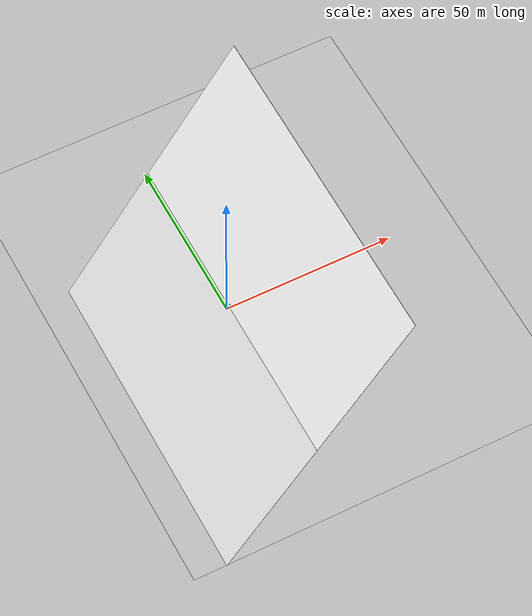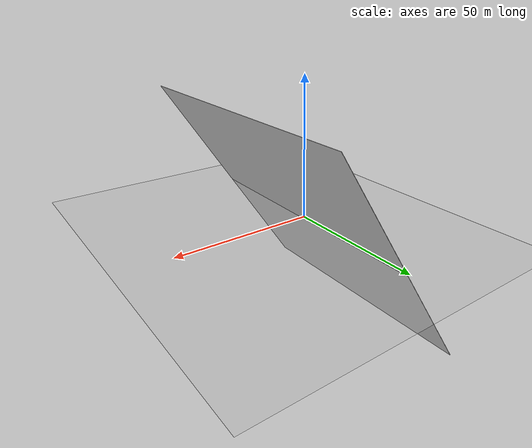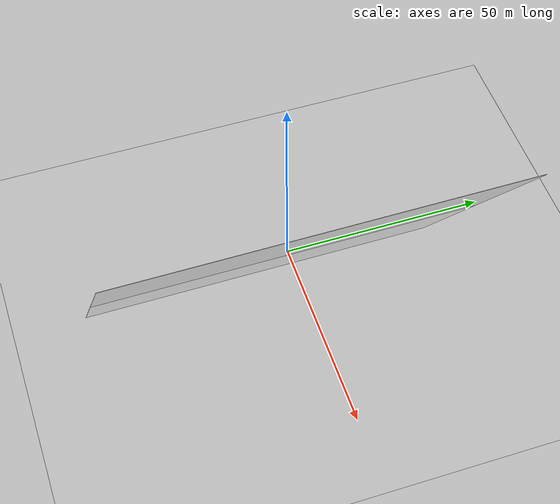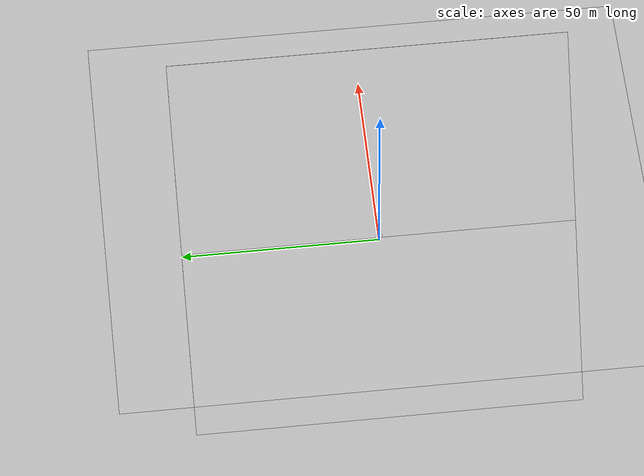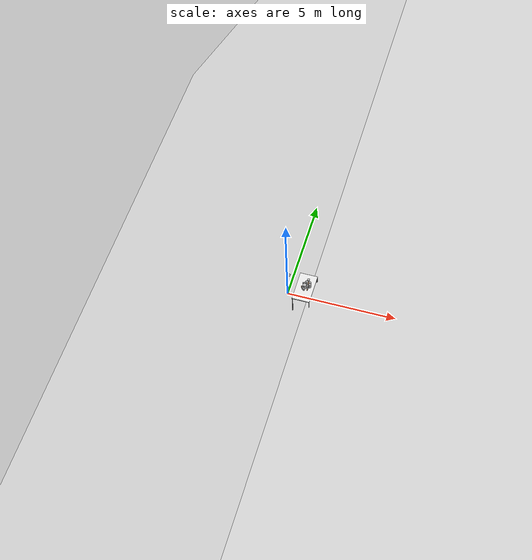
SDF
<sdf version="1.6">
 <world name="default">
  <model name="ground_plane">
   <static>1</static>
   <link name="link">
    <collision name="collision">
     <geometry><plane><normal>0 0 1</normal><size>100 100</size></plane></geometry>
     <surface><friction><ode><mu>100</mu><mu2>50</mu2></ode></friction></surface>
    </collision>
    <visual name="visual">
     <cast_shadows>0</cast_shadows>
     <geometry><plane><normal>0 0 1</normal><size>100 100</size></plane></geometry>
     <material>
      <script><uri>file://media/materials/scripts/gazebo.material</uri><name>Gazebo/Grey</name></script>
     </material>
    </visual>
   </link>
  </model>
  <model name="wall_plane">
   <pose>1 0 0 0 -1 0</pose>
   <static>1</static>
   <link name="link">
    <collision name="collision">
     <geometry><plane><normal>0 0 1</normal><size>100 100</size></plane></geometry>
     <surface><friction><ode><mu>100</mu><mu2>50</mu2></ode></friction></surface>
    </collision>
    <visual name="visual">
     <cast_shadows>0</cast_shadows>
     <geometry><plane><normal>0 0 1</normal><size>100 100</size></plane></geometry>
     <material>
      <script><uri>file://media/materials/scripts/gazebo.material</uri><name>Gazebo/White</name></script>
     </material>
    </visual>
   </link>
  </model>
  <gravity>0 0 -9.8</gravity>
  <magnetic_field>6e-06 2.3e-05 -4.2e-05</magnetic_field>
  <atmosphere type="adiabatic"/>
  <physics name="default_physics" default="0" type="ode">
   <max_step_size>0.001</max_step_size>
   <real_time_factor>1</real_time_factor>
   <real_time_update_rate>1000</real_time_update_rate>
  </physics>
  <scene><ambient>0.4 0.4 0.4 1</ambient><background>0.7 0.7 0.7 1</background><shadows>1</shadows></scene>
  <spherical_coordinates>
   <surface_model>EARTH_WGS84</surface_model>
   <latitude_deg>0</latitude_deg>
   <longitude_deg>0</longitude_deg>
   <elevation>0</elevation>
   <heading_deg>0</heading_deg>
  </spherical_coordinates>
  <model name="kinect2_victor_head">
   <pose>0.07 0 1.5 0 0.5 0</pose>
   <static>1</static>
   <link name="kinect2_victor_head">
    <inertial>
     <mass>1</mass>
     <inertia><ixx>1</ixx><ixy>0</ixy><ixz>0</ixz><iyy>1</iyy><iyz>0</iyz><izz>1</izz></inertia>
    </inertial>
    <collision name="collision"><geometry><box><size>0.1 0.1 0.1</size></box></geometry></collision>
    <visual name="visual"><geometry><box><size>0.1 0.1 0.1</size></box></geometry></visual>
    <sensor name="camera" type="depth">
     <camera name="__default__">
      <horizontal_fov>1.578</horizontal_fov>
      <image><width>1920</width><height>1080</height><format>B8G8R8</format></image>
      <clip><near>0.05</near><far>2.5</far></clip>
      <depth_camera><output>depths</output></depth_camera>
     </camera>
     <plugin name="kinect2_victor_head_plugin" filename="libgazebo_ros_openni_kinect.so">
      <cameraName>kinect2_victor_head</cameraName>
      <alwaysOn>1</alwaysOn>
      <updateRate>3</updateRate>
      <imageTopicName>hd/image_color_rect</imageTopicName>
      <depthImageTopicName>hd/image_depth_rect</depthImageTopicName>
      <pointCloudTopicName>hd/points</pointCloudTopicName>
      <cameraInfoTopicName>hd/camera_info</cameraInfoTopicName>
      <depthImageCameraInfoTopicName>hd/camera_info</depthImageCameraInfoTopicName>
      <frameName>kinect2_victor_head_optical_frame</frameName>
      <baseline>0.07</baseline>
      <distortion_k1>0.0</distortion_k1>
      <distortion_k2>0.0</distortion_k2>
      <distortion_k3>0.0</distortion_k3>
      <distortion_t1>0.0</distortion_t1>
      <distortion_t2>0.0</distortion_t2>
      <pointCloudCutoff>0.05</pointCloudCutoff>
      <robotNamespace>/</robotNamespace>
     </plugin>
     <always_on>1</always_on>
     <update_rate>3</update_rate>
    </sensor>
    <gravity>0</gravity>
   </link>
  </model>
  <model name="table">
   <static>1</static>
   <link name="link">
    <collision name="surface">
     <pose>0 0 1 0 -0 0</pose>
     <geometry><box><size>1.5 0.8 0.03</size></box></geometry>
     <surface><friction><ode><mu>0.6</mu><mu2>0.6</mu2></ode></friction></surface>
    </collision>
    <visual name="visual1">
     <pose>0 0 1 0 -0 0</pose>
     <geometry><box><size>1.4 0.8 0.04</size></box></geometry>
     <material>
      <script><uri>file://media/materials/scripts/gazebo.material</uri><name>Gazebo/White</name></script>
     </material>
    </visual>
    <collision name="front_left_leg">
     <pose>0.68 0.38 0.5 0 -0 0</pose>
     <geometry><cylinder><radius>0.02</radius><length>1</length></cylinder></geometry>
    </collision>
    <visual name="front_left_leg">
     <pose>0.68 0.38 0.5 0 -0 0</pose>
     <geometry><cylinder><radius>0.02</radius><length>1</length></cylinder></geometry>
     <material>
      <script><uri>file://media/materials/scripts/gazebo.material</uri><name>Gazebo/Grey</name></script>
     </material>
    </visual>
    <collision name="front_right_leg">
     <pose>0.68 -0.38 0.5 0 -0 0</pose>
     <geometry><cylinder><radius>0.02</radius><length>1</length></cylinder></geometry>
    </collision>
    <visual name="front_right_leg">
     <pose>0.68 -0.38 0.5 0 -0 0</pose>
     <geometry><cylinder><radius>0.02</radius><length>1</length></cylinder></geometry>
     <material>
      <script><uri>file://media/materials/scripts/gazebo.material</uri><name>Gazebo/Grey</name></script>
     </material>
    </visual>
    <collision name="back_right_leg">
     <pose>-0.68 -0.38 0.5 0 -0 0</pose>
     <geometry><cylinder><radius>0.02</radius><length>1</length></cylinder></geometry>
    </collision>
    <visual name="back_right_leg">
     <pose>-0.68 -0.38 0.5 0 -0 0</pose>
     <geometry><cylinder><radius>0.02</radius><length>1</length></cylinder></geometry>
     <material>
      <script><uri>file://media/materials/scripts/gazebo.material</uri><name>Gazebo/Grey</name></script>
     </material>
    </visual>
    <collision name="back_left_leg">
     <pose>-0.68 0.38 0.5 0 -0 0</pose>
     <geometry><cylinder><radius>0.02</radius><length>1</length></cylinder></geometry>
    </collision>
    <visual name="back_left_leg">
     <pose>-0.68 0.38 0.5 0 -0 0</pose>
     <geometry><cylinder><radius>0.02</radius><length>1</length></cylinder></geometry>
     <material>
      <script><uri>file://media/materials/scripts/gazebo.material</uri><name>Gazebo/Grey</name></script>
     </material>
    </visual>
    <inertial>
     <inertia><ixx>1</ixx><ixy>0</ixy><ixz>0</ixz><iyy>1</iyy><iyz>0</iyz><izz>1</izz></inertia>
     <mass>1</mass>
    </inertial>
   </link>
   <pose>0.8 0 -0.2 0 0 -1.5708</pose>
  </model>
  <model name="beer">
   <link name="link">
    <pose>0 0 0.115 0 -0 0</pose>
    <inertial>
     <mass>0.39</mass>
     <inertia><ixx>0.00058</ixx><ixy>0</ixy><ixz>0</ixz><iyy>0.00058</iyy><iyz>0</iyz><izz>0.00019</izz></inertia>
    </inertial>
    <collision name="collision">
     <geometry><cylinder><radius>0.055</radius><length>0.23</length></cylinder></geometry>
    </collision>
    <visual name="visual">
     <geometry><cylinder><radius>0.055</radius><length>0.23</length></cylinder></geometry>
     <material>
      <script>
       <uri>model://beer/materials/scripts</uri>
       <uri>model://beer/materials/textures</uri>
       <name>Beer/Diffuse</name>
      </script>
     </material>
    </visual>
   </link>
   <pose>1.01385 0.069428 0.815002 5e-06 3.3e-05 -0.283171</pose>
  </model>
  <light name="user_spot_light_0" type="spot">
   <pose>0 0 20 0 -0 0</pose>
   <diffuse>0.5 0.5 0.5 1</diffuse>
   <specular>0.1 0.1 0.1 1</specular>
   <direction>0 0 -1</direction>
   <attenuation>
    <range>20</range>
    <constant>0.5</constant>
    <linear>0.01</linear>
    <quadratic>0.001</quadratic>
   </attenuation>
   <cast_shadows>0</cast_shadows>
   <spot><inner_angle>0.6</inner_angle><outer_angle>1</outer_angle><falloff>1</falloff></spot>
  </light>
  <model name="wood_cube_10cm">
   <link name="link">
    <pose>0 0 0.05 0 -0 0</pose>
    <inertial>
     <mass>0.5167</mass>
     <inertia>
      <ixx>0.000861167</ixx>
      <ixy>0</ixy>
      <ixz>0</ixz>
      <iyy>0.000861167</iyy>
      <iyz>0</iyz>
      <izz>0.000861167</izz>
     </inertia>
    </inertial>
    <collision name="collision">
     <geometry><box><size>0.1 0.1 0.1</size></box></geometry>
     <surface>
      <contact>
       <poissons_ratio>0.347</poissons_ratio>
       <elastic_modulus>8.8e+09</elastic_modulus>
       <ode><kp>100000</kp><kd>100</kd><max_vel>100</max_vel><min_depth>0.001</min_depth></ode>
      </contact>
      <friction>
       <torsional>
        <coefficient>1</coefficient>
        <use_patch_radius>0</use_patch_radius>
        <surface_radius>0.01</surface_radius>
       </torsional>
      </friction>
     </surface>
    </collision>
    <visual name="visual">
     <geometry><box><size>0.1 0.1 0.1</size></box></geometry>
     <material>
      <script><uri>file://media/materials/scripts/gazebo.material</uri><name>Gazebo/Wood</name></script>
     </material>
    </visual>
   </link>
   <pose>0.88995 0.204253 0.813987 0 -0 -0.038435</pose>
  </model>
  <model name="wood_cube_7_5cm">
   <link name="link">
    <pose>0 0 0.0375 0 -0 0</pose>
    <inertial>
     <mass>0.2249</mass>
     <inertia>
      <ixx>0.000210844</ixx>
      <ixy>0</ixy>
      <ixz>0</ixz>
      <iyy>0.000210844</iyy>
      <iyz>0</iyz>
      <izz>0.000210844</izz>
     </inertia>
    </inertial>
    <collision name="collision">
     <geometry><box><size>0.075 0.075 0.075</size></box></geometry>
     <surface>
      <contact>
       <poissons_ratio>0.347</poissons_ratio>
       <elastic_modulus>8.8e+09</elastic_modulus>
       <ode><kp>100000</kp><kd>100</kd><max_vel>100</max_vel><min_depth>0.001</min_depth></ode>
      </contact>
      <friction>
       <torsional>
        <coefficient>1</coefficient>
        <use_patch_radius>0</use_patch_radius>
        <surface_radius>0.01</surface_radius>
       </torsional>
      </friction>
     </surface>
    </collision>
    <visual name="visual">
     <geometry><box><size>0.075 0.075 0.075</size></box></geometry>
     <material>
      <script><uri>file://media/materials/scripts/gazebo.material</uri><name>Gazebo/Wood</name></script>
     </material>
    </visual>
   </link>
   <pose>0.658651 0.016922 0.851495 -1.23021 -1.57079 -3.14159</pose>
  </model>
  <model name="beer_0">
   <link name="link">
    <pose>0 0 0.115 0 -0 0</pose>
    <inertial>
     <mass>0.39</mass>
     <inertia><ixx>0.00058</ixx><ixy>0</ixy><ixz>0</ixz><iyy>0.00058</iyy><iyz>0</iyz><izz>0.00019</izz></inertia>
    </inertial>
    <collision name="collision">
     <geometry><cylinder><radius>0.055</radius><length>0.161</length></cylinder></geometry>
    </collision>
    <visual name="visual">
     <geometry><cylinder><radius>0.055</radius><length>0.161</length></cylinder></geometry>
     <material>
      <script>
       <uri>model://beer/materials/scripts</uri>
       <uri>model://beer/materials/textures</uri>
       <name>Beer/Diffuse</name>
      </script>
     </material>
    </visual>
   </link>
   <pose>0.878076 0.34516 0.780501 1.3e-05 7e-06 0.023907</pose>
  </model>
  <model name="wood_cube_5cm">
   <link name="link">
    <pose>0 0 0.025 0 -0 0</pose>
    <inertial>
     <mass>0.0565</mass>
     <inertia>
      <ixx>2.35417e-05</ixx>
      <ixy>0</ixy>
      <ixz>0</ixz>
      <iyy>2.35417e-05</iyy>
      <iyz>0</iyz>
      <izz>2.35417e-05</izz>
     </inertia>
    </inertial>
    <collision name="collision">
     <geometry><box><size>0.05 0.05 0.05</size></box></geometry>
     <surface>
      <contact>
       <poissons_ratio>0.347</poissons_ratio>
       <elastic_modulus>8.8e+09</elastic_modulus>
       <ode><kp>100000</kp><kd>1</kd><max_vel>1</max_vel><min_depth>0.001</min_depth></ode>
      </contact>
      <friction>
       <torsional>
        <coefficient>1</coefficient>
        <use_patch_radius>0</use_patch_radius>
        <surface_radius>0.05</surface_radius>
       </torsional>
      </friction>
     </surface>
    </collision>
    <visual name="visual">
     <geometry><box><size>0.05 0.05 0.05</size></box></geometry>
     <material>
      <script><uri>file://media/materials/scripts/gazebo.material</uri><name>Gazebo/Wood</name></script>
     </material>
    </visual>
   </link>
   <pose>0.94151 -0.113973 0.863999 -3.14159 -0 -1.43399</pose>
  </model>
  <audio><device>default</device></audio>
  <model name="beer_1">
   <link name="link">
    <pose>0 0 0.115 0 -0 0</pose>
    <inertial>
     <mass>0.39</mass>
     <inertia><ixx>0.00058</ixx><ixy>0</ixy><ixz>0</ixz><iyy>0.00058</iyy><iyz>0</iyz><izz>0.00019</izz></inertia>
    </inertial>
    <collision name="collision">
     <geometry><cylinder><radius>0.055</radius><length>0.345</length></cylinder></geometry>
    </collision>
    <visual name="visual">
     <geometry><cylinder><radius>0.055</radius><length>0.345</length></cylinder></geometry>
     <material>
      <script>
       <uri>model://beer/materials/scripts</uri>
       <uri>model://beer/materials/textures</uri>
       <name>Beer/Diffuse</name>
      </script>
     </material>
    </visual>
   </link>
   <pose>0.880899 0.0976 0.872506 3.1e-05 9.8e-05 0.321278</pose>
  </model>
  <model name="beer_2">
   <link name="link">
    <pose>0 0 0.115 0 -0 0</pose>
    <inertial>
     <mass>0.39</mass>
     <inertia><ixx>0.00058</ixx><ixy>0</ixy><ixz>0</ixz><iyy>0.00058</iyy><iyz>0</iyz><izz>0.00019</izz></inertia>
    </inertial>
    <collision name="collision">
     <geometry><cylinder><radius>0.0385</radius><length>0.23</length></cylinder></geometry>
    </collision>
    <visual name="visual">
     <geometry><cylinder><radius>0.0385</radius><length>0.23</length></cylinder></geometry>
     <material>
      <script>
       <uri>model://beer/materials/scripts</uri>
       <uri>model://beer/materials/textures</uri>
       <name>Beer/Diffuse</name>
      </script>
     </material>
    </visual>
   </link>
   <pose>0.936768 -0.036266 0.814993 5.4e-05 3.6e-05 2.10965</pose>
  </model>
  <model name="beer_3">
   <link name="link">
    <pose>0 0 0.115 0 -0 0</pose>
    <inertial>
     <mass>0.39</mass>
     <inertia><ixx>0.00058</ixx><ixy>0</ixy><ixz>0</ixz><iyy>0.00058</iyy><iyz>0</iyz><izz>0.00019</izz></inertia>
    </inertial>
    <collision name="collision">
     <geometry><cylinder><radius>0.0825</radius><length>0.23</length></cylinder></geometry>
    </collision>
    <visual name="visual">
     <geometry><cylinder><radius>0.0825</radius><length>0.23</length></cylinder></geometry>
     <material>
      <script>
       <uri>model://beer/materials/scripts</uri>
       <uri>model://beer/materials/textures</uri>
       <name>Beer/Diffuse</name>
      </script>
     </material>
    </visual>
   </link>
   <pose>0.79662 -0.011549 0.814997 4.3e-05 1.6e-05 -0.753909</pose>
  </model>
  <model name="can_fanta">
   <link name="link">
    <inertial>
     <mass>0.39</mass>
     <inertia>
      <ixx>0.00055575</ixx>
      <ixy>0</ixy>
      <ixz>0</ixz>
      <iyy>0.00055575</iyy>
      <iyz>0</iyz>
      <izz>0.0001755</izz>
     </inertia>
    </inertial>
    <visual name="visual">
     <geometry><cylinder><radius>0.03</radius><length>0.13</length></cylinder></geometry>
     <material>
      <script>
       <uri>model://can_fanta/materials/scripts</uri>
       <uri>model://can_fanta/materials/textures</uri>
       <name>fanta</name>
      </script>
     </material>
    </visual>
    <collision name="collision">
     <geometry><cylinder><radius>0.03</radius><length>0.13</length></cylinder></geometry>
    </collision>
   </link>
   <static>0</static>
   <pose>0.797105 0.254114 0.88 7e-06 -1.3e-05 1.48544</pose>
  </model>
  <model name="can_pepsi">
   <link name="link">
    <inertial>
     <mass>0.39</mass>
     <inertia>
      <ixx>0.00055575</ixx>
      <ixy>0</ixy>
      <ixz>0</ixz>
      <iyy>0.00055575</iyy>
      <iyz>0</iyz>
      <izz>0.0001755</izz>
     </inertia>
    </inertial>
    <visual name="visual">
     <geometry><cylinder><radius>0.03</radius><length>0.195</length></cylinder></geometry>
     <material>
      <script>
       <uri>model://can_pepsi/materials/scripts</uri>
       <uri>model://can_pepsi/materials/textures</uri>
       <name>pepsi</name>
      </script>
     </material>
    </visual>
    <collision name="collision">
     <geometry><cylinder><radius>0.03</radius><length>0.195</length></cylinder></geometry>
    </collision>
   </link>
   <static>0</static>
   <pose>0.71087 -0.085043 0.912492 3.6e-05 -3.8e-05 1.40493</pose>
  </model>
  <model name="can_sprite">
   <link name="link">
    <inertial>
     <mass>0.39</mass>
     <inertia>
      <ixx>0.00055575</ixx>
      <ixy>0</ixy>
      <ixz>0</ixz>
      <iyy>0.00055575</iyy>
      <iyz>0</iyz>
      <izz>0.0001755</izz>
     </inertia>
    </inertial>
    <visual name="visual">
     <geometry><cylinder><radius>0.03</radius><length>0.13</length></cylinder></geometry>
     <material>
      <script>
       <uri>model://can_sprite/materials/scripts</uri>
       <uri>model://can_sprite/materials/textures</uri>
       <name>sprite</name>
      </script>
     </material>
    </visual>
    <collision name="collision">
     <geometry><cylinder><radius>0.03</radius><length>0.13</length></cylinder></geometry>
    </collision>
   </link>
   <static>0</static>
   <pose>0.7404 0.097531 0.879991 -2.3e-05 -5e-06 -0.489622</pose>
  </model>
  <model name="can_fanta_0">
   <link name="link">
    <inertial>
     <mass>0.39</mass>
     <inertia>
      <ixx>0.00055575</ixx>
      <ixy>0</ixy>
      <ixz>0</ixz>
      <iyy>0.00055575</iyy>
      <iyz>0</iyz>
      <izz>0.0001755</izz>
     </inertia>
    </inertial>
    <visual name="visual">
     <geometry><cylinder><radius>0.03</radius><length>0.13</length></cylinder></geometry>
     <material>
      <script>
       <uri>model://can_fanta/materials/scripts</uri>
       <uri>model://can_fanta/materials/textures</uri>
       <name>fanta</name>
      </script>
     </material>
    </visual>
    <collision name="collision">
     <geometry><cylinder><radius>0.03</radius><length>0.13</length></cylinder></geometry>
    </collision>
   </link>
   <static>0</static>
   <pose>0.935822 0.032288 0.879999 9e-06 2.5e-05 -1.03916</pose>
  </model>
  <model name="can_pepsi_0">
   <link name="link">
    <inertial>
     <mass>0.39</mass>
     <inertia>
      <ixx>0.00055575</ixx>
      <ixy>0</ixy>
      <ixz>0</ixz>
      <iyy>0.00055575</iyy>
      <iyz>0</iyz>
      <izz>0.0001755</izz>
     </inertia>
    </inertial>
    <visual name="visual">
     <geometry><cylinder><radius>0.045</radius><length>0.13</length></cylinder></geometry>
     <material>
      <script>
       <uri>model://can_pepsi/materials/scripts</uri>
       <uri>model://can_pepsi/materials/textures</uri>
       <name>pepsi</name>
      </script>
     </material>
    </visual>
    <collision name="collision">
     <geometry><cylinder><radius>0.045</radius><length>0.13</length></cylinder></geometry>
    </collision>
   </link>
   <static>0</static>
   <pose>0.797536 -0.139185 0.879991 2.2e-05 4e-06 -1.55481</pose>
  </model>
  <model name="can_sprite_0">
   <link name="link">
    <inertial>
     <mass>0.39</mass>
     <inertia>
      <ixx>0.00055575</ixx>
      <ixy>0</ixy>
      <ixz>0</ixz>
      <iyy>0.00055575</iyy>
      <iyz>0</iyz>
      <izz>0.0001755</izz>
     </inertia>
    </inertial>
    <visual name="visual">
     <geometry><cylinder><radius>0.045</radius><length>0.195</length></cylinder></geometry>
     <material>
      <script>
       <uri>model://can_sprite/materials/scripts</uri>
       <uri>model://can_sprite/materials/textures</uri>
       <name>sprite</name>
      </script>
     </material>
    </visual>
    <collision name="collision">
     <geometry><cylinder><radius>0.045</radius><length>0.195</length></cylinder></geometry>
    </collision>
   </link>
   <static>0</static>
   <pose>0.987262 0.186179 0.912501 3.3e-05 -1e-06 -1.3576</pose>
  </model>
  <model name="can_coke">
   <link name="link">
    <pose>0.003937 0.004724 -0.18 0 -0 0</pose>
    <inertial>
     <mass>0.39</mass>
     <inertia>
      <ixx>0.00055575</ixx>
      <ixy>0</ixy>
      <ixz>0</ixz>
      <iyy>0.00055575</iyy>
      <iyz>0</iyz>
      <izz>0.0001755</izz>
     </inertia>
    </inertial>
    <collision name="collision">
     <geometry><cylinder><radius>0.03</radius><length>0.13</length></cylinder></geometry>
    </collision>
    <visual name="visual">
     <material>
      <script>
       <uri>model://can_coke/materials/scripts</uri>
       <uri>model://can_coke/materials/textures</uri>
       <name>coke</name>
      </script>
     </material>
     <geometry><cylinder><radius>0.03</radius><length>0.13</length></cylinder></geometry>
    </visual>
   </link>
   <pose>0.693747 0.150178 1.06 2.9e-05 -1.1e-05 -2.65859</pose>
  </model>
  <model name="can_coke_0">
   <link name="link">
    <pose>0.003937 0.004724 -0.18 0 -0 0</pose>
    <inertial>
     <mass>0.39</mass>
     <inertia>
      <ixx>0.00055575</ixx>
      <ixy>0</ixy>
      <ixz>0</ixz>
      <iyy>0.00055575</iyy>
      <iyz>0</iyz>
      <izz>0.0001755</izz>
     </inertia>
    </inertial>
    <collision name="collision">
     <geometry><cylinder><radius>0.045</radius><length>0.13</length></cylinder></geometry>
    </collision>
    <visual name="visual">
     <material>
      <script>
       <uri>model://can_coke/materials/scripts</uri>
       <uri>model://can_coke/materials/textures</uri>
       <name>coke</name>
      </script>
     </material>
     <geometry><cylinder><radius>0.045</radius><length>0.13</length></cylinder></geometry>
    </visual>
   </link>
   <pose>0.783381 0.178054 1.06 1.8e-05 2.1e-05 2.62219</pose>
  </model>
 </world>
</sdf>
